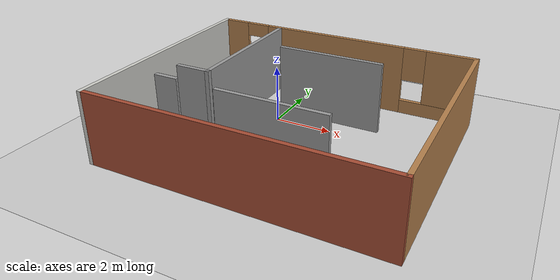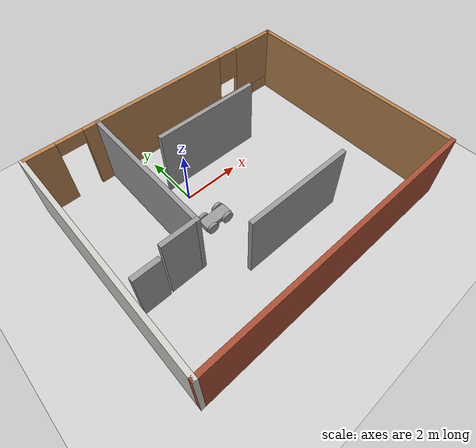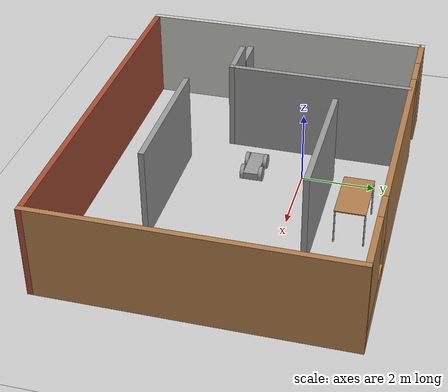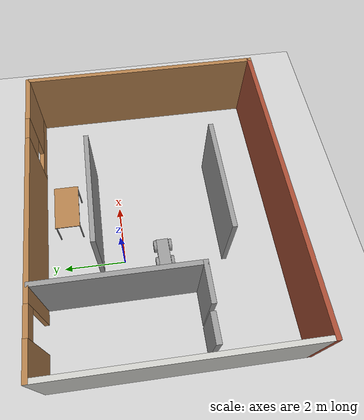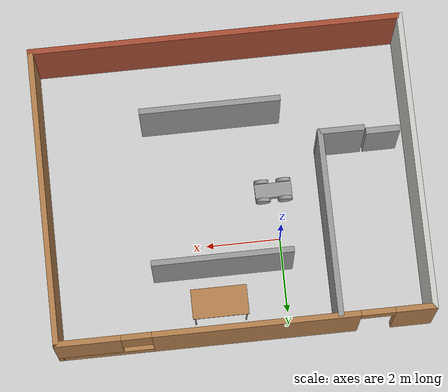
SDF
<sdf version="1.6">
 <world name="default">
  <model name="ground_plane">
   <static>1</static>
   <link name="link">
    <collision name="collision">
     <geometry><plane><normal>0 0 1</normal><size>100 100</size></plane></geometry>
     <surface>
      <contact><collide_bitmask>65535</collide_bitmask></contact>
      <friction><ode><mu>100</mu><mu2>50</mu2></ode></friction>
     </surface>
    </collision>
    <visual name="visual">
     <cast_shadows>0</cast_shadows>
     <geometry><plane><normal>0 0 1</normal><size>100 100</size></plane></geometry>
     <material>
      <script><uri>file://media/materials/scripts/gazebo.material</uri><name>Gazebo/Grey</name></script>
     </material>
    </visual>
   </link>
  </model>
  <model name="mybuilding">
   <pose>1.21707 -1.29966 0 0 -0 0</pose>
   <link name="Door_2">
    <collision name="Door_2_Collision">
     <geometry><box><size>0.9 0.17 2</size></box></geometry>
     <pose>0 0 1 0 -0 0</pose>
    </collision>
    <visual name="Door_2_Visual">
     <pose>0 0 1 0 -0 0</pose>
     <geometry><box><size>0.9 0.17 2</size></box></geometry>
     <material>
      <script><uri>file://media/materials/scripts/gazebo.material</uri><name>Gazebo/Grey</name></script>
     </material>
    </visual>
    <pose>-4.16533 -0.987413 0 0 -0 0</pose>
   </link>
   <link name="Wall_11">
    <collision name="Wall_11_Collision">
     <geometry><box><size>5 0.15 2.5</size></box></geometry>
     <pose>0 0 1.25 0 -0 0</pose>
    </collision>
    <visual name="Wall_11_Visual">
     <pose>0 0 1.25 0 -0 0</pose>
     <geometry><box><size>5 0.15 2.5</size></box></geometry>
     <material>
      <script><uri>file://media/materials/scripts/gazebo.material</uri><name>Gazebo/Grey</name></script>
      <ambient>1 1 1 1</ambient>
     </material>
     <meta><layer>0</layer></meta>
    </visual>
    <pose>-2.47679 1.44501 0 0 0 -1.5708</pose>
   </link>
   <link name="Wall_12">
    <collision name="Wall_12_Collision">
     <geometry><box><size>1.25 0.15 2.5</size></box></geometry>
     <pose>0 0 1.25 0 -0 0</pose>
    </collision>
    <visual name="Wall_12_Visual">
     <pose>0 0 1.25 0 -0 0</pose>
     <geometry><box><size>1.25 0.15 2.5</size></box></geometry>
     <material>
      <script><uri>file://media/materials/scripts/gazebo.material</uri><name>Gazebo/Grey</name></script>
      <ambient>1 1 1 1</ambient>
     </material>
     <meta><layer>0</layer></meta>
    </visual>
    <pose>-3.02679 -0.979985 0 0 -0 3.14159</pose>
   </link>
   <link name="Wall_15">
    <collision name="Wall_15_Collision">
     <geometry><box><size>3.75 0.15 2.5</size></box></geometry>
     <pose>0 0 1.25 0 -0 0</pose>
    </collision>
    <visual name="Wall_15_Visual">
     <pose>0 0 1.25 0 -0 0</pose>
     <geometry><box><size>3.75 0.15 2.5</size></box></geometry>
     <material>
      <script><uri>file://media/materials/scripts/gazebo.material</uri><name>Gazebo/Grey</name></script>
      <ambient>1 1 1 1</ambient>
     </material>
     <meta><layer>0</layer></meta>
    </visual>
    <pose>0.410344 2.06583 0 0 -0 0</pose>
   </link>
   <link name="Wall_17">
    <collision name="Wall_17_Collision">
     <geometry><box><size>3.75 0.15 2.5</size></box></geometry>
     <pose>0 0 1.25 0 -0 0</pose>
    </collision>
    <visual name="Wall_17_Visual">
     <pose>0 0 1.25 0 -0 0</pose>
     <geometry><box><size>3.75 0.15 2.5</size></box></geometry>
     <material>
      <script><uri>file://media/materials/scripts/gazebo.material</uri><name>Gazebo/Grey</name></script>
      <ambient>1 1 1 1</ambient>
     </material>
     <meta><layer>0</layer></meta>
    </visual>
    <pose>0.340952 -2.00516 0 0 -0 0</pose>
   </link>
   <link name="Wall_5">
    <collision name="Wall_5_Collision">
     <geometry><box><size>10 0.15 2.5</size></box></geometry>
     <pose>0 0 1.25 0 -0 0</pose>
    </collision>
    <visual name="Wall_5_Visual">
     <pose>0 0 1.25 0 -0 0</pose>
     <geometry><box><size>10 0.15 2.5</size></box></geometry>
     <material>
      <script><uri>file://media/materials/scripts/gazebo.material</uri><name>Gazebo/Bricks</name></script>
      <ambient>1 1 1 1</ambient>
     </material>
     <meta><layer>0</layer></meta>
    </visual>
    <pose>0 -3.925 0 0 -0 3.14159</pose>
   </link>
   <link name="Wall_7">
    <collision name="Wall_7_Collision">
     <geometry><box><size>8 0.15 2.5</size></box></geometry>
     <pose>0 0 1.25 0 -0 0</pose>
    </collision>
    <visual name="Wall_7_Visual">
     <pose>0 0 1.25 0 -0 0</pose>
     <geometry><box><size>8 0.15 2.5</size></box></geometry>
     <material>
      <script><uri>file://media/materials/scripts/gazebo.material</uri><name>Gazebo/CeilingTiled</name></script>
      <ambient>1 1 1 1</ambient>
     </material>
     <meta><layer>0</layer></meta>
    </visual>
    <pose>-4.925 0 0 0 -0 1.5708</pose>
   </link>
   <link name="Wall_8">
    <pose>0 3.925 0 0 -0 0</pose>
    <visual name="Wall_8_Visual_0">
     <pose>-4.44914 0 1.25 0 -0 0</pose>
     <geometry><box><size>1.10172 0.15 2.5</size></box></geometry>
     <material>
      <script><uri>file://media/materials/scripts/gazebo.material</uri><name>Gazebo/Wood</name></script>
      <ambient>1 1 1 1</ambient>
     </material>
     <meta><layer>0</layer></meta>
    </visual>
    <collision name="Wall_8_Collision_0">
     <geometry><box><size>1.10172 0.15 2.5</size></box></geometry>
     <pose>-4.44914 0 1.25 0 -0 0</pose>
    </collision>
    <visual name="Wall_8_Visual_1">
     <pose>-0.277517 0 1.25 0 -0 0</pose>
     <geometry><box><size>5.44153 0.15 2.5</size></box></geometry>
     <material>
      <script><uri>file://media/materials/scripts/gazebo.material</uri><name>Gazebo/Wood</name></script>
      <ambient>1 1 1 1</ambient>
     </material>
     <meta><layer>0</layer></meta>
    </visual>
    <collision name="Wall_8_Collision_1">
     <geometry><box><size>5.44153 0.15 2.5</size></box></geometry>
     <pose>-0.277517 0 1.25 0 -0 0</pose>
    </collision>
    <visual name="Wall_8_Visual_2">
     <pose>3.72162 0 0.25 0 -0 0</pose>
     <geometry><box><size>2.55675 0.15 0.5</size></box></geometry>
     <material>
      <script><uri>file://media/materials/scripts/gazebo.material</uri><name>Gazebo/Wood</name></script>
      <ambient>1 1 1 1</ambient>
     </material>
     <meta><layer>0</layer></meta>
    </visual>
    <collision name="Wall_8_Collision_2">
     <geometry><box><size>2.55675 0.15 0.5</size></box></geometry>
     <pose>3.72162 0 0.25 0 -0 0</pose>
    </collision>
    <visual name="Wall_8_Visual_3">
     <pose>4.12162 0 1.5 0 -0 0</pose>
     <geometry><box><size>1.75676 0.15 2</size></box></geometry>
     <material>
      <script><uri>file://media/materials/scripts/gazebo.material</uri><name>Gazebo/Wood</name></script>
      <ambient>1 1 1 1</ambient>
     </material>
     <meta><layer>0</layer></meta>
    </visual>
    <collision name="Wall_8_Collision_3">
     <geometry><box><size>1.75676 0.15 2</size></box></geometry>
     <pose>4.12162 0 1.5 0 -0 0</pose>
    </collision>
    <visual name="Wall_8_Visual_4">
     <pose>2.84325 0 1.9 0 -0 0</pose>
     <geometry><box><size>0.8 0.15 1.2</size></box></geometry>
     <material>
      <script><uri>file://media/materials/scripts/gazebo.material</uri><name>Gazebo/Wood</name></script>
      <ambient>1 1 1 1</ambient>
     </material>
     <meta><layer>0</layer></meta>
    </visual>
    <collision name="Wall_8_Collision_4">
     <geometry><box><size>0.8 0.15 1.2</size></box></geometry>
     <pose>2.84325 0 1.9 0 -0 0</pose>
    </collision>
    <visual name="Wall_8_Visual_5">
     <pose>-3.44828 0 2.25 0 -0 0</pose>
     <geometry><box><size>0.9 0.15 0.5</size></box></geometry>
     <material>
      <script><uri>file://media/materials/scripts/gazebo.material</uri><name>Gazebo/Wood</name></script>
      <ambient>1 1 1 1</ambient>
     </material>
     <meta><layer>0</layer></meta>
    </visual>
    <collision name="Wall_8_Collision_5">
     <geometry><box><size>0.9 0.15 0.5</size></box></geometry>
     <pose>-3.44828 0 2.25 0 -0 0</pose>
    </collision>
   </link>
   <link name="Wall_9">
    <collision name="Wall_9_Collision">
     <geometry><box><size>8 0.15 2.5</size></box></geometry>
     <pose>0 0 1.25 0 -0 0</pose>
    </collision>
    <visual name="Wall_9_Visual">
     <pose>0 0 1.25 0 -0 0</pose>
     <geometry><box><size>8 0.15 2.5</size></box></geometry>
     <material>
      <script><uri>file://media/materials/scripts/gazebo.material</uri><name>Gazebo/Wood</name></script>
      <ambient>1 1 1 1</ambient>
     </material>
     <meta><layer>0</layer></meta>
    </visual>
    <pose>4.925 0 0 0 0 -1.5708</pose>
   </link>
   <static>1</static>
  </model>
  <model name="mod_robot_0">
   <link name="link_0">
    <inertial>
     <mass>1</mass>
     <inertia>
      <ixx>0.166667</ixx>
      <ixy>0</ixy>
      <ixz>0</ixz>
      <iyy>0.166667</iyy>
      <iyz>0</iyz>
      <izz>0.166667</izz>
     </inertia>
    </inertial>
    <visual name="visual">
     <geometry><box><size>1 0.4 0.2</size></box></geometry>
     <material>
      <lighting>1</lighting>
      <script><uri>file://media/materials/scripts/gazebo.material</uri><name>Gazebo/Grey</name></script>
      <shader type="pixel"><normal_map>__default__</normal_map></shader>
      <ambient>0.3 0.3 0.3 1</ambient>
      <diffuse>0.7 0.7 0.7 1</diffuse>
      <specular>0.01 0.01 0.01 1</specular>
      <emissive>0 0 0 1</emissive>
     </material>
    </visual>
    <collision name="collision">
     <geometry><box><size>1 0.4 0.2</size></box></geometry>
     <surface>
      <friction>
       <ode><mu>1</mu><mu2>1</mu2><fdir1>0 0 0</fdir1><slip1>0</slip1><slip2>0</slip2></ode>
       <torsional>
        <coefficient>1</coefficient>
        <patch_radius>0</patch_radius>
        <surface_radius>0</surface_radius>
        <use_patch_radius>1</use_patch_radius>
        <ode><slip>0</slip></ode>
       </torsional>
      </friction>
      <bounce><restitution_coefficient>0</restitution_coefficient><threshold>1e+06</threshold></bounce>
      <contact>
       <collide_without_contact>0</collide_without_contact>
       <collide_without_contact_bitmask>1</collide_without_contact_bitmask>
       <collide_bitmask>1</collide_bitmask>
       <ode>
        <soft_cfm>0</soft_cfm>
        <soft_erp>0.2</soft_erp>
        <kp>1e+13</kp>
        <kd>1</kd>
        <max_vel>0.01</max_vel>
        <min_depth>0</min_depth>
       </ode>
       <bullet>
        <split_impulse>1</split_impulse>
        <split_impulse_penetration_threshold>-0.01</split_impulse_penetration_threshold>
        <soft_cfm>0</soft_cfm>
        <soft_erp>0.2</soft_erp>
        <kp>1e+13</kp>
        <kd>1</kd>
       </bullet>
      </contact>
     </surface>
    </collision>
   </link>
   <link name="link_1">
    <pose>0.3 -0.250019 0 1.5707 -0 0</pose>
    <inertial>
     <mass>1</mass>
     <inertia><ixx>0.145833</ixx><ixy>0</ixy><ixz>0</ixz><iyy>0.145833</iyy><iyz>0</iyz><izz>0.125</izz></inertia>
    </inertial>
    <visual name="visual">
     <geometry><cylinder><radius>0.2</radius><length>0.1</length></cylinder></geometry>
     <material>
      <lighting>1</lighting>
      <script><uri>file://media/materials/scripts/gazebo.material</uri><name>Gazebo/Grey</name></script>
      <shader type="pixel"><normal_map>__default__</normal_map></shader>
      <ambient>0.3 0.3 0.3 1</ambient>
      <diffuse>0.7 0.7 0.7 1</diffuse>
      <specular>0.01 0.01 0.01 1</specular>
      <emissive>0 0 0 1</emissive>
     </material>
    </visual>
    <collision name="collision">
     <geometry><cylinder><radius>0.2</radius><length>0.1</length></cylinder></geometry>
     <surface>
      <friction>
       <ode><mu>1</mu><mu2>1</mu2><fdir1>0 0 0</fdir1><slip1>0</slip1><slip2>0</slip2></ode>
       <torsional>
        <coefficient>1</coefficient>
        <patch_radius>0</patch_radius>
        <surface_radius>0</surface_radius>
        <use_patch_radius>1</use_patch_radius>
        <ode><slip>0</slip></ode>
       </torsional>
      </friction>
      <bounce><restitution_coefficient>0</restitution_coefficient><threshold>1e+06</threshold></bounce>
      <contact>
       <collide_without_contact>0</collide_without_contact>
       <collide_without_contact_bitmask>1</collide_without_contact_bitmask>
       <collide_bitmask>1</collide_bitmask>
       <ode>
        <soft_cfm>0</soft_cfm>
        <soft_erp>0.2</soft_erp>
        <kp>1e+13</kp>
        <kd>1</kd>
        <max_vel>0.01</max_vel>
        <min_depth>0</min_depth>
       </ode>
       <bullet>
        <split_impulse>1</split_impulse>
        <split_impulse_penetration_threshold>-0.01</split_impulse_penetration_threshold>
        <soft_cfm>0</soft_cfm>
        <soft_erp>0.2</soft_erp>
        <kp>1e+13</kp>
        <kd>1</kd>
       </bullet>
      </contact>
     </surface>
    </collision>
   </link>
   <link name="link_1_clone">
    <pose>-0.3 -0.250019 0 1.5707 -0 0</pose>
    <inertial>
     <mass>1</mass>
     <inertia><ixx>0.145833</ixx><ixy>0</ixy><ixz>0</ixz><iyy>0.145833</iyy><iyz>0</iyz><izz>0.125</izz></inertia>
    </inertial>
    <visual name="visual">
     <geometry><cylinder><radius>0.2</radius><length>0.1</length></cylinder></geometry>
     <material>
      <lighting>1</lighting>
      <script><uri>file://media/materials/scripts/gazebo.material</uri><name>Gazebo/Grey</name></script>
      <shader type="pixel"><normal_map>__default__</normal_map></shader>
      <ambient>0.3 0.3 0.3 1</ambient>
      <diffuse>0.7 0.7 0.7 1</diffuse>
      <specular>0.01 0.01 0.01 1</specular>
      <emissive>0 0 0 1</emissive>
     </material>
    </visual>
    <collision name="collision">
     <geometry><cylinder><radius>0.2</radius><length>0.1</length></cylinder></geometry>
     <surface>
      <friction>
       <ode><mu>1</mu><mu2>1</mu2><fdir1>0 0 0</fdir1><slip1>0</slip1><slip2>0</slip2></ode>
       <torsional>
        <coefficient>1</coefficient>
        <patch_radius>0</patch_radius>
        <surface_radius>0</surface_radius>
        <use_patch_radius>1</use_patch_radius>
        <ode><slip>0</slip></ode>
       </torsional>
      </friction>
      <bounce><restitution_coefficient>0</restitution_coefficient><threshold>1e+06</threshold></bounce>
      <contact>
       <collide_without_contact>0</collide_without_contact>
       <collide_without_contact_bitmask>1</collide_without_contact_bitmask>
       <collide_bitmask>1</collide_bitmask>
       <ode>
        <soft_cfm>0</soft_cfm>
        <soft_erp>0.2</soft_erp>
        <kp>1e+13</kp>
        <kd>1</kd>
        <max_vel>0.01</max_vel>
        <min_depth>0</min_depth>
       </ode>
       <bullet>
        <split_impulse>1</split_impulse>
        <split_impulse_penetration_threshold>-0.01</split_impulse_penetration_threshold>
        <soft_cfm>0</soft_cfm>
        <soft_erp>0.2</soft_erp>
        <kp>1e+13</kp>
        <kd>1</kd>
       </bullet>
      </contact>
     </surface>
    </collision>
   </link>
   <link name="link_1_clone_0">
    <pose>0.3 0.250019 0 1.5707 -0 0</pose>
    <inertial>
     <mass>1</mass>
     <inertia><ixx>0.145833</ixx><ixy>0</ixy><ixz>0</ixz><iyy>0.145833</iyy><iyz>0</iyz><izz>0.125</izz></inertia>
    </inertial>
    <visual name="visual">
     <geometry><cylinder><radius>0.2</radius><length>0.1</length></cylinder></geometry>
     <material>
      <lighting>1</lighting>
      <script><uri>file://media/materials/scripts/gazebo.material</uri><name>Gazebo/Grey</name></script>
      <shader type="pixel"><normal_map>__default__</normal_map></shader>
      <ambient>0.3 0.3 0.3 1</ambient>
      <diffuse>0.7 0.7 0.7 1</diffuse>
      <specular>0.01 0.01 0.01 1</specular>
      <emissive>0 0 0 1</emissive>
     </material>
    </visual>
    <collision name="collision">
     <geometry><cylinder><radius>0.2</radius><length>0.1</length></cylinder></geometry>
     <surface>
      <friction>
       <ode><mu>1</mu><mu2>1</mu2><fdir1>0 0 0</fdir1><slip1>0</slip1><slip2>0</slip2></ode>
       <torsional>
        <coefficient>1</coefficient>
        <patch_radius>0</patch_radius>
        <surface_radius>0</surface_radius>
        <use_patch_radius>1</use_patch_radius>
        <ode><slip>0</slip></ode>
       </torsional>
      </friction>
      <bounce><restitution_coefficient>0</restitution_coefficient><threshold>1e+06</threshold></bounce>
      <contact>
       <collide_without_contact>0</collide_without_contact>
       <collide_without_contact_bitmask>1</collide_without_contact_bitmask>
       <collide_bitmask>1</collide_bitmask>
       <ode>
        <soft_cfm>0</soft_cfm>
        <soft_erp>0.2</soft_erp>
        <kp>1e+13</kp>
        <kd>1</kd>
        <max_vel>0.01</max_vel>
        <min_depth>0</min_depth>
       </ode>
       <bullet>
        <split_impulse>1</split_impulse>
        <split_impulse_penetration_threshold>-0.01</split_impulse_penetration_threshold>
        <soft_cfm>0</soft_cfm>
        <soft_erp>0.2</soft_erp>
        <kp>1e+13</kp>
        <kd>1</kd>
       </bullet>
      </contact>
     </surface>
    </collision>
   </link>
   <link name="link_1_clone_1">
    <pose>-0.3 0.250019 0 1.5707 -0 0</pose>
    <inertial>
     <mass>1</mass>
     <inertia><ixx>0.145833</ixx><ixy>0</ixy><ixz>0</ixz><iyy>0.145833</iyy><iyz>0</iyz><izz>0.125</izz></inertia>
    </inertial>
    <visual name="visual">
     <geometry><cylinder><radius>0.2</radius><length>0.1</length></cylinder></geometry>
     <material>
      <lighting>1</lighting>
      <script><uri>file://media/materials/scripts/gazebo.material</uri><name>Gazebo/Grey</name></script>
      <shader type="pixel"><normal_map>__default__</normal_map></shader>
      <ambient>0.3 0.3 0.3 1</ambient>
      <diffuse>0.7 0.7 0.7 1</diffuse>
      <specular>0.01 0.01 0.01 1</specular>
      <emissive>0 0 0 1</emissive>
     </material>
    </visual>
    <collision name="collision">
     <geometry><cylinder><radius>0.2</radius><length>0.1</length></cylinder></geometry>
     <surface>
      <friction>
       <ode><mu>1</mu><mu2>1</mu2><fdir1>0 0 0</fdir1><slip1>0</slip1><slip2>0</slip2></ode>
       <torsional>
        <coefficient>1</coefficient>
        <patch_radius>0</patch_radius>
        <surface_radius>0</surface_radius>
        <use_patch_radius>1</use_patch_radius>
        <ode><slip>0</slip></ode>
       </torsional>
      </friction>
      <bounce><restitution_coefficient>0</restitution_coefficient><threshold>1e+06</threshold></bounce>
      <contact>
       <collide_without_contact>0</collide_without_contact>
       <collide_without_contact_bitmask>1</collide_without_contact_bitmask>
       <collide_bitmask>1</collide_bitmask>
       <ode>
        <soft_cfm>0</soft_cfm>
        <soft_erp>0.2</soft_erp>
        <kp>1e+13</kp>
        <kd>1</kd>
        <max_vel>0.01</max_vel>
        <min_depth>0</min_depth>
       </ode>
       <bullet>
        <split_impulse>1</split_impulse>
        <split_impulse_penetration_threshold>-0.01</split_impulse_penetration_threshold>
        <soft_cfm>0</soft_cfm>
        <soft_erp>0.2</soft_erp>
        <kp>1e+13</kp>
        <kd>1</kd>
       </bullet>
      </contact>
     </surface>
    </collision>
   </link>
   <joint name="link_0_JOINT_1" type="revolute">
    <parent>link_0</parent>
    <child>link_1_clone</child>
    <axis>
     <xyz>0 0 1</xyz>
     <use_parent_model_frame>0</use_parent_model_frame>
     <limit>
      <lower>-1.79769e+308</lower>
      <upper>1.79769e+308</upper>
      <effort>-1</effort>
      <velocity>-1</velocity>
     </limit>
     <dynamics>
      <spring_reference>0</spring_reference>
      <spring_stiffness>0</spring_stiffness>
      <damping>0</damping>
     </dynamics>
    </axis>
    <physics>
     <ode><limit><cfm>0</cfm><erp>0.2</erp></limit><suspension><cfm>0</cfm><erp>0.2</erp></suspension></ode>
    </physics>
   </joint>
   <joint name="link_0_JOINT_2" type="revolute">
    <parent>link_0</parent>
    <child>link_1_clone_1</child>
    <axis>
     <xyz>0 0 1</xyz>
     <use_parent_model_frame>0</use_parent_model_frame>
     <limit>
      <lower>-1.79769e+308</lower>
      <upper>1.79769e+308</upper>
      <effort>-1</effort>
      <velocity>-1</velocity>
     </limit>
     <dynamics>
      <spring_reference>0</spring_reference>
      <spring_stiffness>0</spring_stiffness>
      <damping>0</damping>
     </dynamics>
    </axis>
    <physics>
     <ode><limit><cfm>0</cfm><erp>0.2</erp></limit><suspension><cfm>0</cfm><erp>0.2</erp></suspension></ode>
    </physics>
   </joint>
   <joint name="link_0_JOINT_3" type="revolute">
    <parent>link_0</parent>
    <child>link_1</child>
    <axis>
     <xyz>0 0 1</xyz>
     <use_parent_model_frame>0</use_parent_model_frame>
     <limit>
      <lower>-1.79769e+308</lower>
      <upper>1.79769e+308</upper>
      <effort>-1</effort>
      <velocity>-1</velocity>
     </limit>
     <dynamics>
      <spring_reference>0</spring_reference>
      <spring_stiffness>0</spring_stiffness>
      <damping>0</damping>
     </dynamics>
    </axis>
    <physics>
     <ode><limit><cfm>0</cfm><erp>0.2</erp></limit><suspension><cfm>0</cfm><erp>0.2</erp></suspension></ode>
    </physics>
   </joint>
   <joint name="link_0_JOINT_4" type="revolute">
    <parent>link_0</parent>
    <child>link_1_clone_0</child>
    <axis>
     <xyz>0 0 1</xyz>
     <use_parent_model_frame>0</use_parent_model_frame>
     <limit>
      <lower>-1.79769e+308</lower>
      <upper>1.79769e+308</upper>
      <effort>-1</effort>
      <velocity>-1</velocity>
     </limit>
     <dynamics>
      <spring_reference>0</spring_reference>
      <spring_stiffness>0</spring_stiffness>
      <damping>0</damping>
     </dynamics>
    </axis>
    <physics>
     <ode><limit><cfm>0</cfm><erp>0.2</erp></limit><suspension><cfm>0</cfm><erp>0.2</erp></suspension></ode>
    </physics>
   </joint>
   <static>0</static>
   <pose>0.04432 -1.31676 0.200005 1e-06 -1e-06 0.01318</pose>
  </model>
  <model name="table_0">
   <static>1</static>
   <link name="link">
    <collision name="surface">
     <pose>0 0 1 0 -0 0</pose>
     <geometry><box><size>1.5 0.8 0.03</size></box></geometry>
     <surface><friction><ode><mu>0.6</mu><mu2>0.6</mu2></ode></friction></surface>
    </collision>
    <visual name="visual1">
     <pose>0 0 1 0 -0 0</pose>
     <geometry><box><size>1.5 0.8 0.03</size></box></geometry>
     <material>
      <script><uri>file://media/materials/scripts/gazebo.material</uri><name>Gazebo/Wood</name></script>
     </material>
    </visual>
    <collision name="front_left_leg">
     <pose>0.68 0.38 0.5 0 -0 0</pose>
     <geometry><cylinder><radius>0.02</radius><length>1</length></cylinder></geometry>
    </collision>
    <visual name="front_left_leg">
     <pose>0.68 0.38 0.5 0 -0 0</pose>
     <geometry><cylinder><radius>0.02</radius><length>1</length></cylinder></geometry>
     <material>
      <script><uri>file://media/materials/scripts/gazebo.material</uri><name>Gazebo/Grey</name></script>
     </material>
    </visual>
    <collision name="front_right_leg">
     <pose>0.68 -0.38 0.5 0 -0 0</pose>
     <geometry><cylinder><radius>0.02</radius><length>1</length></cylinder></geometry>
    </collision>
    <visual name="front_right_leg">
     <pose>0.68 -0.38 0.5 0 -0 0</pose>
     <geometry><cylinder><radius>0.02</radius><length>1</length></cylinder></geometry>
     <material>
      <script><uri>file://media/materials/scripts/gazebo.material</uri><name>Gazebo/Grey</name></script>
     </material>
    </visual>
    <collision name="back_right_leg">
     <pose>-0.68 -0.38 0.5 0 -0 0</pose>
     <geometry><cylinder><radius>0.02</radius><length>1</length></cylinder></geometry>
    </collision>
    <visual name="back_right_leg">
     <pose>-0.68 -0.38 0.5 0 -0 0</pose>
     <geometry><cylinder><radius>0.02</radius><length>1</length></cylinder></geometry>
     <material>
      <script><uri>file://media/materials/scripts/gazebo.material</uri><name>Gazebo/Grey</name></script>
     </material>
    </visual>
    <collision name="back_left_leg">
     <pose>-0.68 0.38 0.5 0 -0 0</pose>
     <geometry><cylinder><radius>0.02</radius><length>1</length></cylinder></geometry>
    </collision>
    <visual name="back_left_leg">
     <pose>-0.68 0.38 0.5 0 -0 0</pose>
     <geometry><cylinder><radius>0.02</radius><length>1</length></cylinder></geometry>
     <material>
      <script><uri>file://media/materials/scripts/gazebo.material</uri><name>Gazebo/Grey</name></script>
     </material>
    </visual>
   </link>
   <pose>1.80619 1.7044 0 0 -0 0</pose>
  </model>
 </world>
</sdf>
